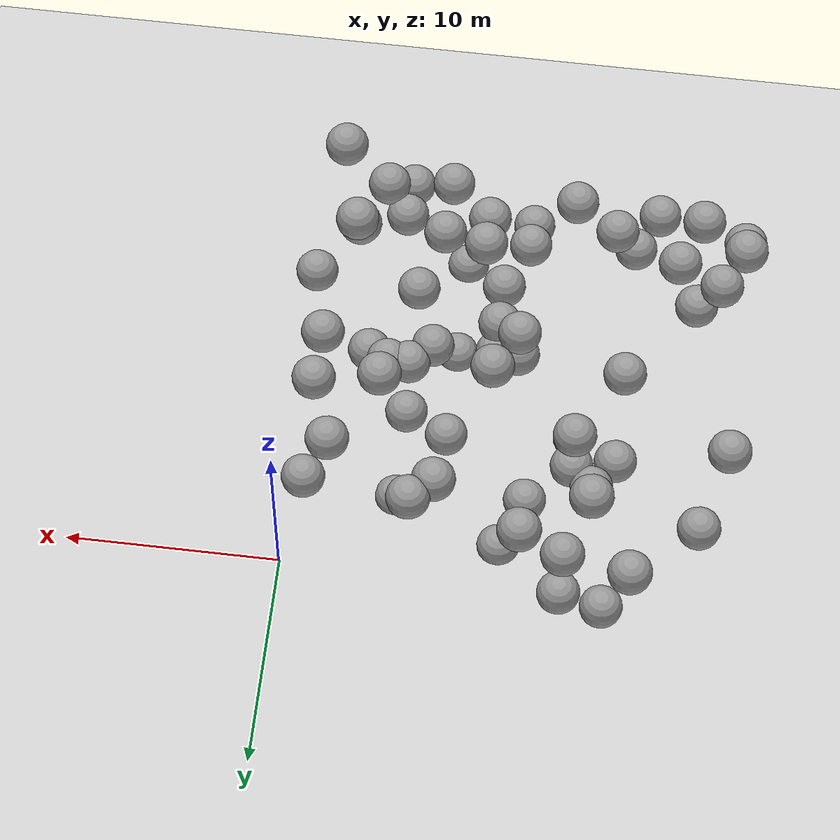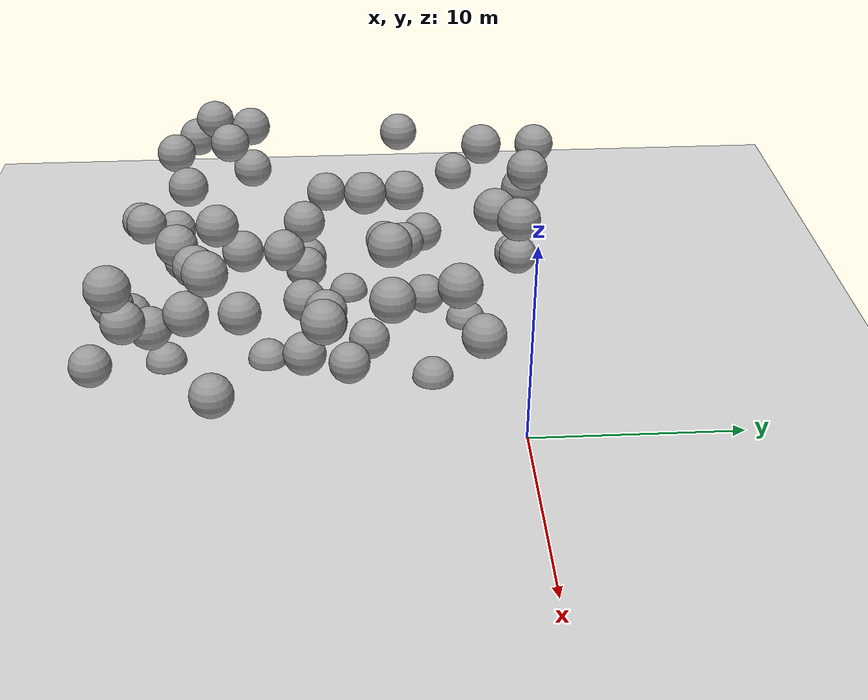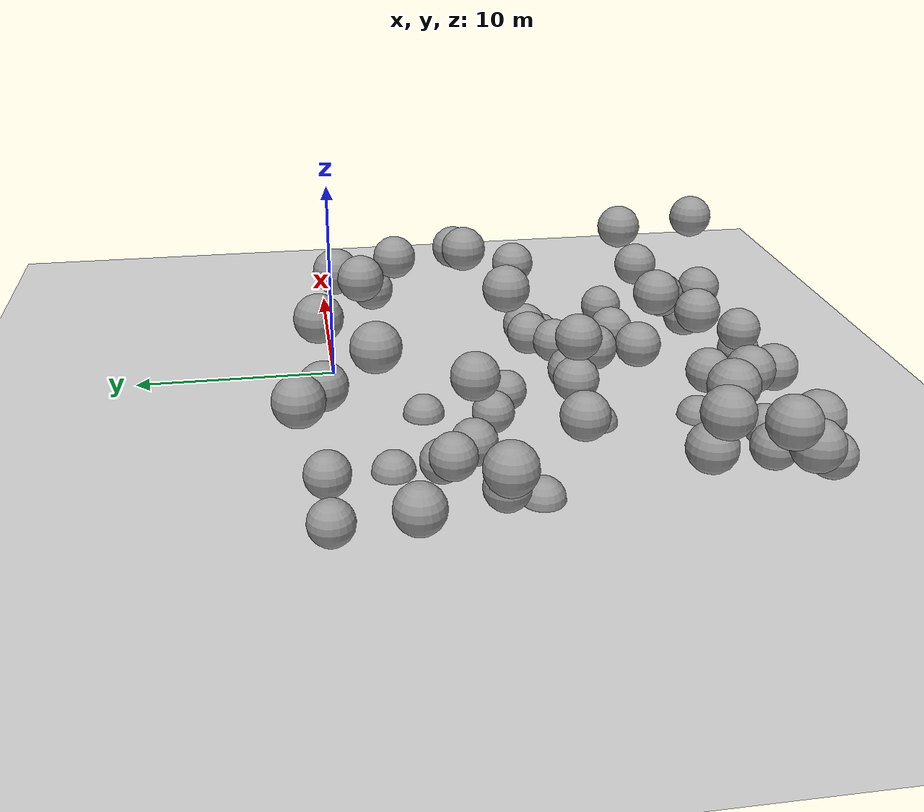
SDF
<sdf version="1.7">
 <world name="default">
  <model name="ground_plane">
   <static>1</static>
   <link name="link">
    <collision name="collision">
     <geometry><plane><normal>0 0 1</normal><size>100 100</size></plane></geometry>
     <surface>
      <contact><collide_bitmask>65535</collide_bitmask></contact>
      <friction><ode><mu>100</mu><mu2>50</mu2></ode></friction>
     </surface>
    </collision>
    <visual name="visual">
     <cast_shadows>0</cast_shadows>
     <geometry><plane><normal>0 0 1</normal><size>100 100</size></plane></geometry>
     <material>
      <script><uri>file://media/materials/scripts/gazebo.material</uri><name>Gazebo/Grey</name></script>
     </material>
    </visual>
   </link>
  </model>
  <model name="sphere_3">
   <static>1</static>
   <pose>-2 -3 7 0 0 0</pose>
   <link name="link">
    <inertial>
     <mass>418.87902047863906</mass>
     <inertia>
      <ixx>167.55160819145564</ixx>
      <iyy>167.55160819145564</iyy>
      <izz>167.55160819145564</izz>
      <ixy>0</ixy>
      <ixz>0</ixz>
      <iyz>0</iyz>
     </inertia>
    </inertial>
    <collision name="collision"><geometry><sphere><radius>1.0</radius></sphere></geometry></collision>
    <visual name="visual">
     <geometry><sphere><radius>1.0</radius></sphere></geometry>
     <material>
      <script><uri>file://media/materials/scripts/gazebo.material</uri><name>Gazebo/Grey</name></script>
     </material>
    </visual>
   </link>
  </model>
  <model name="sphere_6">
   <static>1</static>
   <pose>-15 -6 2 0 0 0</pose>
   <link name="link">
    <inertial>
     <mass>418.87902047863906</mass>
     <inertia>
      <ixx>167.55160819145564</ixx>
      <iyy>167.55160819145564</iyy>
      <izz>167.55160819145564</izz>
      <ixy>0</ixy>
      <ixz>0</ixz>
      <iyz>0</iyz>
     </inertia>
    </inertial>
    <collision name="collision"><geometry><sphere><radius>1.0</radius></sphere></geometry></collision>
    <visual name="visual">
     <geometry><sphere><radius>1.0</radius></sphere></geometry>
     <material>
      <script><uri>file://media/materials/scripts/gazebo.material</uri><name>Gazebo/Grey</name></script>
     </material>
    </visual>
   </link>
  </model>
  <model name="sphere_9">
   <static>1</static>
   <pose>-5 -4 0 0 0 0</pose>
   <link name="link">
    <inertial>
     <mass>418.87902047863906</mass>
     <inertia>
      <ixx>167.55160819145564</ixx>
      <iyy>167.55160819145564</iyy>
      <izz>167.55160819145564</izz>
      <ixy>0</ixy>
      <ixz>0</ixz>
      <iyz>0</iyz>
     </inertia>
    </inertial>
    <collision name="collision"><geometry><sphere><radius>1.0</radius></sphere></geometry></collision>
    <visual name="visual">
     <geometry><sphere><radius>1.0</radius></sphere></geometry>
     <material>
      <script><uri>file://media/materials/scripts/gazebo.material</uri><name>Gazebo/Grey</name></script>
     </material>
    </visual>
   </link>
  </model>
  <model name="sphere_14">
   <static>1</static>
   <pose>-7 -7 1 0 0 0</pose>
   <link name="link">
    <inertial>
     <mass>418.87902047863906</mass>
     <inertia>
      <ixx>167.55160819145564</ixx>
      <iyy>167.55160819145564</iyy>
      <izz>167.55160819145564</izz>
      <ixy>0</ixy>
      <ixz>0</ixz>
      <iyz>0</iyz>
     </inertia>
    </inertial>
    <collision name="collision"><geometry><sphere><radius>1.0</radius></sphere></geometry></collision>
    <visual name="visual">
     <geometry><sphere><radius>1.0</radius></sphere></geometry>
     <material>
      <script><uri>file://media/materials/scripts/gazebo.material</uri><name>Gazebo/Grey</name></script>
     </material>
    </visual>
   </link>
  </model>
  <model name="sphere_19">
   <static>1</static>
   <pose>-11 -4 1 0 0 0</pose>
   <link name="link">
    <inertial>
     <mass>418.87902047863906</mass>
     <inertia>
      <ixx>167.55160819145564</ixx>
      <iyy>167.55160819145564</iyy>
      <izz>167.55160819145564</izz>
      <ixy>0</ixy>
      <ixz>0</ixz>
      <iyz>0</iyz>
     </inertia>
    </inertial>
    <collision name="collision"><geometry><sphere><radius>1.0</radius></sphere></geometry></collision>
    <visual name="visual">
     <geometry><sphere><radius>1.0</radius></sphere></geometry>
     <material>
      <script><uri>file://media/materials/scripts/gazebo.material</uri><name>Gazebo/Grey</name></script>
     </material>
    </visual>
   </link>
  </model>
  <model name="sphere_24">
   <static>1</static>
   <pose>-19 -2 4 0 0 0</pose>
   <link name="link">
    <inertial>
     <mass>418.87902047863906</mass>
     <inertia>
      <ixx>167.55160819145564</ixx>
      <iyy>167.55160819145564</iyy>
      <izz>167.55160819145564</izz>
      <ixy>0</ixy>
      <ixz>0</ixz>
      <iyz>0</iyz>
     </inertia>
    </inertial>
    <collision name="collision"><geometry><sphere><radius>1.0</radius></sphere></geometry></collision>
    <visual name="visual">
     <geometry><sphere><radius>1.0</radius></sphere></geometry>
     <material>
      <script><uri>file://media/materials/scripts/gazebo.material</uri><name>Gazebo/Grey</name></script>
     </material>
    </visual>
   </link>
  </model>
  <model name="sphere_27">
   <static>1</static>
   <pose>-10 -2 0 0 0 0</pose>
   <link name="link">
    <inertial>
     <mass>418.87902047863906</mass>
     <inertia>
      <ixx>167.55160819145564</ixx>
      <iyy>167.55160819145564</iyy>
      <izz>167.55160819145564</izz>
      <ixy>0</ixy>
      <ixz>0</ixz>
      <iyz>0</iyz>
     </inertia>
    </inertial>
    <collision name="collision"><geometry><sphere><radius>1.0</radius></sphere></geometry></collision>
    <visual name="visual">
     <geometry><sphere><radius>1.0</radius></sphere></geometry>
     <material>
      <script><uri>file://media/materials/scripts/gazebo.material</uri><name>Gazebo/Grey</name></script>
     </material>
    </visual>
   </link>
  </model>
  <model name="sphere_29">
   <static>1</static>
   <pose>-13 -5 6 0 0 0</pose>
   <link name="link">
    <inertial>
     <mass>418.87902047863906</mass>
     <inertia>
      <ixx>167.55160819145564</ixx>
      <iyy>167.55160819145564</iyy>
      <izz>167.55160819145564</izz>
      <ixy>0</ixy>
      <ixz>0</ixz>
      <iyz>0</iyz>
     </inertia>
    </inertial>
    <collision name="collision"><geometry><sphere><radius>1.0</radius></sphere></geometry></collision>
    <visual name="visual">
     <geometry><sphere><radius>1.0</radius></sphere></geometry>
     <material>
      <script><uri>file://media/materials/scripts/gazebo.material</uri><name>Gazebo/Grey</name></script>
     </material>
    </visual>
   </link>
  </model>
  <model name="sphere_30">
   <static>1</static>
   <pose>-9 -11 5 0 0 0</pose>
   <link name="link">
    <inertial>
     <mass>418.87902047863906</mass>
     <inertia>
      <ixx>167.55160819145564</ixx>
      <iyy>167.55160819145564</iyy>
      <izz>167.55160819145564</izz>
      <ixy>0</ixy>
      <ixz>0</ixz>
      <iyz>0</iyz>
     </inertia>
    </inertial>
    <collision name="collision"><geometry><sphere><radius>1.0</radius></sphere></geometry></collision>
    <visual name="visual">
     <geometry><sphere><radius>1.0</radius></sphere></geometry>
     <material>
      <script><uri>file://media/materials/scripts/gazebo.material</uri><name>Gazebo/Grey</name></script>
     </material>
    </visual>
   </link>
  </model>
  <model name="sphere_33">
   <static>1</static>
   <pose>-3 -10 3 0 0 0</pose>
   <link name="link">
    <inertial>
     <mass>418.87902047863906</mass>
     <inertia>
      <ixx>167.55160819145564</ixx>
      <iyy>167.55160819145564</iyy>
      <izz>167.55160819145564</izz>
      <ixy>0</ixy>
      <ixz>0</ixz>
      <iyz>0</iyz>
     </inertia>
    </inertial>
    <collision name="collision"><geometry><sphere><radius>1.0</radius></sphere></geometry></collision>
    <visual name="visual">
     <geometry><sphere><radius>1.0</radius></sphere></geometry>
     <material>
      <script><uri>file://media/materials/scripts/gazebo.material</uri><name>Gazebo/Grey</name></script>
     </material>
    </visual>
   </link>
  </model>
  <model name="sphere_37">
   <static>1</static>
   <pose>-1 -2 5 0 0 0</pose>
   <link name="link">
    <inertial>
     <mass>418.87902047863906</mass>
     <inertia>
      <ixx>167.55160819145564</ixx>
      <iyy>167.55160819145564</iyy>
      <izz>167.55160819145564</izz>
      <ixy>0</ixy>
      <ixz>0</ixz>
      <iyz>0</iyz>
     </inertia>
    </inertial>
    <collision name="collision"><geometry><sphere><radius>1.0</radius></sphere></geometry></collision>
    <visual name="visual">
     <geometry><sphere><radius>1.0</radius></sphere></geometry>
     <material>
      <script><uri>file://media/materials/scripts/gazebo.material</uri><name>Gazebo/Grey</name></script>
     </material>
    </visual>
   </link>
  </model>
  <model name="sphere_38">
   <static>1</static>
   <pose>-6 -19 4 0 0 0</pose>
   <link name="link">
    <inertial>
     <mass>418.87902047863906</mass>
     <inertia>
      <ixx>167.55160819145564</ixx>
      <iyy>167.55160819145564</iyy>
      <izz>167.55160819145564</izz>
      <ixy>0</ixy>
      <ixz>0</ixz>
      <iyz>0</iyz>
     </inertia>
    </inertial>
    <collision name="collision"><geometry><sphere><radius>1.0</radius></sphere></geometry></collision>
    <visual name="visual">
     <geometry><sphere><radius>1.0</radius></sphere></geometry>
     <material>
      <script><uri>file://media/materials/scripts/gazebo.material</uri><name>Gazebo/Grey</name></script>
     </material>
    </visual>
   </link>
  </model>
  <model name="sphere_54">
   <static>1</static>
   <pose>-1 -6 7 0 0 0</pose>
   <link name="link">
    <inertial>
     <mass>418.87902047863906</mass>
     <inertia>
      <ixx>167.55160819145564</ixx>
      <iyy>167.55160819145564</iyy>
      <izz>167.55160819145564</izz>
      <ixy>0</ixy>
      <ixz>0</ixz>
      <iyz>0</iyz>
     </inertia>
    </inertial>
    <collision name="collision"><geometry><sphere><radius>1.0</radius></sphere></geometry></collision>
    <visual name="visual">
     <geometry><sphere><radius>1.0</radius></sphere></geometry>
     <material>
      <script><uri>file://media/materials/scripts/gazebo.material</uri><name>Gazebo/Grey</name></script>
     </material>
    </visual>
   </link>
  </model>
  <model name="sphere_56">
   <static>1</static>
   <pose>-10 -10 6 0 0 0</pose>
   <link name="link">
    <inertial>
     <mass>418.87902047863906</mass>
     <inertia>
      <ixx>167.55160819145564</ixx>
      <iyy>167.55160819145564</iyy>
      <izz>167.55160819145564</izz>
      <ixy>0</ixy>
      <ixz>0</ixz>
      <iyz>0</iyz>
     </inertia>
    </inertial>
    <collision name="collision"><geometry><sphere><radius>1.0</radius></sphere></geometry></collision>
    <visual name="visual">
     <geometry><sphere><radius>1.0</radius></sphere></geometry>
     <material>
      <script><uri>file://media/materials/scripts/gazebo.material</uri><name>Gazebo/Grey</name></script>
     </material>
    </visual>
   </link>
  </model>
  <model name="sphere_58">
   <static>1</static>
   <pose>-16 2 7 0 0 0</pose>
   <link name="link">
    <inertial>
     <mass>418.87902047863906</mass>
     <inertia>
      <ixx>167.55160819145564</ixx>
      <iyy>167.55160819145564</iyy>
      <izz>167.55160819145564</izz>
      <ixy>0</ixy>
      <ixz>0</ixz>
      <iyz>0</iyz>
     </inertia>
    </inertial>
    <collision name="collision"><geometry><sphere><radius>1.0</radius></sphere></geometry></collision>
    <visual name="visual">
     <geometry><sphere><radius>1.0</radius></sphere></geometry>
     <material>
      <script><uri>file://media/materials/scripts/gazebo.material</uri><name>Gazebo/Grey</name></script>
     </material>
    </visual>
   </link>
  </model>
  <model name="sphere_60">
   <static>1</static>
   <pose>-16 -19 3 0 0 0</pose>
   <link name="link">
    <inertial>
     <mass>418.87902047863906</mass>
     <inertia>
      <ixx>167.55160819145564</ixx>
      <iyy>167.55160819145564</iyy>
      <izz>167.55160819145564</izz>
      <ixy>0</ixy>
      <ixz>0</ixz>
      <iyz>0</iyz>
     </inertia>
    </inertial>
    <collision name="collision"><geometry><sphere><radius>1.0</radius></sphere></geometry></collision>
    <visual name="visual">
     <geometry><sphere><radius>1.0</radius></sphere></geometry>
     <material>
      <script><uri>file://media/materials/scripts/gazebo.material</uri><name>Gazebo/Grey</name></script>
     </material>
    </visual>
   </link>
  </model>
  <model name="sphere_64">
   <static>1</static>
   <pose>-18 -17 6 0 0 0</pose>
   <link name="link">
    <inertial>
     <mass>418.87902047863906</mass>
     <inertia>
      <ixx>167.55160819145564</ixx>
      <iyy>167.55160819145564</iyy>
      <izz>167.55160819145564</izz>
      <ixy>0</ixy>
      <ixz>0</ixz>
      <iyz>0</iyz>
     </inertia>
    </inertial>
    <collision name="collision"><geometry><sphere><radius>1.0</radius></sphere></geometry></collision>
    <visual name="visual">
     <geometry><sphere><radius>1.0</radius></sphere></geometry>
     <material>
      <script><uri>file://media/materials/scripts/gazebo.material</uri><name>Gazebo/Grey</name></script>
     </material>
    </visual>
   </link>
  </model>
  <model name="sphere_67">
   <static>1</static>
   <pose>-7 -17 0 0 0 0</pose>
   <link name="link">
    <inertial>
     <mass>418.87902047863906</mass>
     <inertia>
      <ixx>167.55160819145564</ixx>
      <iyy>167.55160819145564</iyy>
      <izz>167.55160819145564</izz>
      <ixy>0</ixy>
      <ixz>0</ixz>
      <iyz>0</iyz>
     </inertia>
    </inertial>
    <collision name="collision"><geometry><sphere><radius>1.0</radius></sphere></geometry></collision>
    <visual name="visual">
     <geometry><sphere><radius>1.0</radius></sphere></geometry>
     <material>
      <script><uri>file://media/materials/scripts/gazebo.material</uri><name>Gazebo/Grey</name></script>
     </material>
    </visual>
   </link>
  </model>
  <model name="sphere_76">
   <static>1</static>
   <pose>-5 -8 1 0 0 0</pose>
   <link name="link">
    <inertial>
     <mass>418.87902047863906</mass>
     <inertia>
      <ixx>167.55160819145564</ixx>
      <iyy>167.55160819145564</iyy>
      <izz>167.55160819145564</izz>
      <ixy>0</ixy>
      <ixz>0</ixz>
      <iyz>0</iyz>
     </inertia>
    </inertial>
    <collision name="collision"><geometry><sphere><radius>1.0</radius></sphere></geometry></collision>
    <visual name="visual">
     <geometry><sphere><radius>1.0</radius></sphere></geometry>
     <material>
      <script><uri>file://media/materials/scripts/gazebo.material</uri><name>Gazebo/Grey</name></script>
     </material>
    </visual>
   </link>
  </model>
  <model name="sphere_77">
   <static>1</static>
   <pose>-7 -12 0 0 0 0</pose>
   <link name="link">
    <inertial>
     <mass>418.87902047863906</mass>
     <inertia>
      <ixx>167.55160819145564</ixx>
      <iyy>167.55160819145564</iyy>
      <izz>167.55160819145564</izz>
      <ixy>0</ixy>
      <ixz>0</ixz>
      <iyz>0</iyz>
     </inertia>
    </inertial>
    <collision name="collision"><geometry><sphere><radius>1.0</radius></sphere></geometry></collision>
    <visual name="visual">
     <geometry><sphere><radius>1.0</radius></sphere></geometry>
     <material>
      <script><uri>file://media/materials/scripts/gazebo.material</uri><name>Gazebo/Grey</name></script>
     </material>
    </visual>
   </link>
  </model>
  <model name="sphere_79">
   <static>1</static>
   <pose>-11 1 8 0 0 0</pose>
   <link name="link">
    <inertial>
     <mass>418.87902047863906</mass>
     <inertia>
      <ixx>167.55160819145564</ixx>
      <iyy>167.55160819145564</iyy>
      <izz>167.55160819145564</izz>
      <ixy>0</ixy>
      <ixz>0</ixz>
      <iyz>0</iyz>
     </inertia>
    </inertial>
    <collision name="collision"><geometry><sphere><radius>1.0</radius></sphere></geometry></collision>
    <visual name="visual">
     <geometry><sphere><radius>1.0</radius></sphere></geometry>
     <material>
      <script><uri>file://media/materials/scripts/gazebo.material</uri><name>Gazebo/Grey</name></script>
     </material>
    </visual>
   </link>
  </model>
  <model name="sphere_92">
   <static>1</static>
   <pose>-8 -14 7 0 0 0</pose>
   <link name="link">
    <inertial>
     <mass>418.87902047863906</mass>
     <inertia>
      <ixx>167.55160819145564</ixx>
      <iyy>167.55160819145564</iyy>
      <izz>167.55160819145564</izz>
      <ixy>0</ixy>
      <ixz>0</ixz>
      <iyz>0</iyz>
     </inertia>
    </inertial>
    <collision name="collision"><geometry><sphere><radius>1.0</radius></sphere></geometry></collision>
    <visual name="visual">
     <geometry><sphere><radius>1.0</radius></sphere></geometry>
     <material>
      <script><uri>file://media/materials/scripts/gazebo.material</uri><name>Gazebo/Grey</name></script>
     </material>
    </visual>
   </link>
  </model>
  <model name="sphere_110">
   <static>1</static>
   <pose>-4 -9 4 0 0 0</pose>
   <link name="link">
    <inertial>
     <mass>418.87902047863906</mass>
     <inertia>
      <ixx>167.55160819145564</ixx>
      <iyy>167.55160819145564</iyy>
      <izz>167.55160819145564</izz>
      <ixy>0</ixy>
      <ixz>0</ixz>
      <iyz>0</iyz>
     </inertia>
    </inertial>
    <collision name="collision"><geometry><sphere><radius>1.0</radius></sphere></geometry></collision>
    <visual name="visual">
     <geometry><sphere><radius>1.0</radius></sphere></geometry>
     <material>
      <script><uri>file://media/materials/scripts/gazebo.material</uri><name>Gazebo/Grey</name></script>
     </material>
    </visual>
   </link>
  </model>
  <model name="sphere_111">
   <static>1</static>
   <pose>-5 -13 4 0 0 0</pose>
   <link name="link">
    <inertial>
     <mass>418.87902047863906</mass>
     <inertia>
      <ixx>167.55160819145564</ixx>
      <iyy>167.55160819145564</iyy>
      <izz>167.55160819145564</izz>
      <ixy>0</ixy>
      <ixz>0</ixz>
      <iyz>0</iyz>
     </inertia>
    </inertial>
    <collision name="collision"><geometry><sphere><radius>1.0</radius></sphere></geometry></collision>
    <visual name="visual">
     <geometry><sphere><radius>1.0</radius></sphere></geometry>
     <material>
      <script><uri>file://media/materials/scripts/gazebo.material</uri><name>Gazebo/Grey</name></script>
     </material>
    </visual>
   </link>
  </model>
  <model name="sphere_112">
   <static>1</static>
   <pose>-6 -15 6 0 0 0</pose>
   <link name="link">
    <inertial>
     <mass>418.87902047863906</mass>
     <inertia>
      <ixx>167.55160819145564</ixx>
      <iyy>167.55160819145564</iyy>
      <izz>167.55160819145564</izz>
      <ixy>0</ixy>
      <ixz>0</ixz>
      <iyz>0</iyz>
     </inertia>
    </inertial>
    <collision name="collision"><geometry><sphere><radius>1.0</radius></sphere></geometry></collision>
    <visual name="visual">
     <geometry><sphere><radius>1.0</radius></sphere></geometry>
     <material>
      <script><uri>file://media/materials/scripts/gazebo.material</uri><name>Gazebo/Grey</name></script>
     </material>
    </visual>
   </link>
  </model>
  <model name="sphere_119">
   <static>1</static>
   <pose>-10 -16 4 0 0 0</pose>
   <link name="link">
    <inertial>
     <mass>418.87902047863906</mass>
     <inertia>
      <ixx>167.55160819145564</ixx>
      <iyy>167.55160819145564</iyy>
      <izz>167.55160819145564</izz>
      <ixy>0</ixy>
      <ixz>0</ixz>
      <iyz>0</iyz>
     </inertia>
    </inertial>
    <collision name="collision"><geometry><sphere><radius>1.0</radius></sphere></geometry></collision>
    <visual name="visual">
     <geometry><sphere><radius>1.0</radius></sphere></geometry>
     <material>
      <script><uri>file://media/materials/scripts/gazebo.material</uri><name>Gazebo/Grey</name></script>
     </material>
    </visual>
   </link>
  </model>
  <model name="sphere_120">
   <static>1</static>
   <pose>-14 -4 3 0 0 0</pose>
   <link name="link">
    <inertial>
     <mass>418.87902047863906</mass>
     <inertia>
      <ixx>167.55160819145564</ixx>
      <iyy>167.55160819145564</iyy>
      <izz>167.55160819145564</izz>
      <ixy>0</ixy>
      <ixz>0</ixz>
      <iyz>0</iyz>
     </inertia>
    </inertial>
    <collision name="collision"><geometry><sphere><radius>1.0</radius></sphere></geometry></collision>
    <visual name="visual">
     <geometry><sphere><radius>1.0</radius></sphere></geometry>
     <material>
      <script><uri>file://media/materials/scripts/gazebo.material</uri><name>Gazebo/Grey</name></script>
     </material>
    </visual>
   </link>
  </model>
  <model name="sphere_122">
   <static>1</static>
   <pose>0 -14 3 0 0 0</pose>
   <link name="link">
    <inertial>
     <mass>418.87902047863906</mass>
     <inertia>
      <ixx>167.55160819145564</ixx>
      <iyy>167.55160819145564</iyy>
      <izz>167.55160819145564</izz>
      <ixy>0</ixy>
      <ixz>0</ixz>
      <iyz>0</iyz>
     </inertia>
    </inertial>
    <collision name="collision"><geometry><sphere><radius>1.0</radius></sphere></geometry></collision>
    <visual name="visual">
     <geometry><sphere><radius>1.0</radius></sphere></geometry>
     <material>
      <script><uri>file://media/materials/scripts/gazebo.material</uri><name>Gazebo/Grey</name></script>
     </material>
    </visual>
   </link>
  </model>
  <model name="sphere_124">
   <static>1</static>
   <pose>-5 -9 4 0 0 0</pose>
   <link name="link">
    <inertial>
     <mass>418.87902047863906</mass>
     <inertia>
      <ixx>167.55160819145564</ixx>
      <iyy>167.55160819145564</iyy>
      <izz>167.55160819145564</izz>
      <ixy>0</ixy>
      <ixz>0</ixz>
      <iyz>0</iyz>
     </inertia>
    </inertial>
    <collision name="collision"><geometry><sphere><radius>1.0</radius></sphere></geometry></collision>
    <visual name="visual">
     <geometry><sphere><radius>1.0</radius></sphere></geometry>
     <material>
      <script><uri>file://media/materials/scripts/gazebo.material</uri><name>Gazebo/Grey</name></script>
     </material>
    </visual>
   </link>
  </model>
  <model name="sphere_125">
   <static>1</static>
   <pose>-9 -7 8 0 0 0</pose>
   <link name="link">
    <inertial>
     <mass>418.87902047863906</mass>
     <inertia>
      <ixx>167.55160819145564</ixx>
      <iyy>167.55160819145564</iyy>
      <izz>167.55160819145564</izz>
      <ixy>0</ixy>
      <ixz>0</ixz>
      <iyz>0</iyz>
     </inertia>
    </inertial>
    <collision name="collision"><geometry><sphere><radius>1.0</radius></sphere></geometry></collision>
    <visual name="visual">
     <geometry><sphere><radius>1.0</radius></sphere></geometry>
     <material>
      <script><uri>file://media/materials/scripts/gazebo.material</uri><name>Gazebo/Grey</name></script>
     </material>
    </visual>
   </link>
  </model>
  <model name="sphere_126">
   <static>1</static>
   <pose>-13 1 2 0 0 0</pose>
   <link name="link">
    <inertial>
     <mass>418.87902047863906</mass>
     <inertia>
      <ixx>167.55160819145564</ixx>
      <iyy>167.55160819145564</iyy>
      <izz>167.55160819145564</izz>
      <ixy>0</ixy>
      <ixz>0</ixz>
      <iyz>0</iyz>
     </inertia>
    </inertial>
    <collision name="collision"><geometry><sphere><radius>1.0</radius></sphere></geometry></collision>
    <visual name="visual">
     <geometry><sphere><radius>1.0</radius></sphere></geometry>
     <material>
      <script><uri>file://media/materials/scripts/gazebo.material</uri><name>Gazebo/Grey</name></script>
     </material>
    </visual>
   </link>
  </model>
  <model name="sphere_128">
   <static>1</static>
   <pose>-12 -18 5 0 0 0</pose>
   <link name="link">
    <inertial>
     <mass>418.87902047863906</mass>
     <inertia>
      <ixx>167.55160819145564</ixx>
      <iyy>167.55160819145564</iyy>
      <izz>167.55160819145564</izz>
      <ixy>0</ixy>
      <ixz>0</ixz>
      <iyz>0</iyz>
     </inertia>
    </inertial>
    <collision name="collision"><geometry><sphere><radius>1.0</radius></sphere></geometry></collision>
    <visual name="visual">
     <geometry><sphere><radius>1.0</radius></sphere></geometry>
     <material>
      <script><uri>file://media/materials/scripts/gazebo.material</uri><name>Gazebo/Grey</name></script>
     </material>
    </visual>
   </link>
  </model>
  <model name="sphere_132">
   <static>1</static>
   <pose>-18 -13 5 0 0 0</pose>
   <link name="link">
    <inertial>
     <mass>418.87902047863906</mass>
     <inertia>
      <ixx>167.55160819145564</ixx>
      <iyy>167.55160819145564</iyy>
      <izz>167.55160819145564</izz>
      <ixy>0</ixy>
      <ixz>0</ixz>
      <iyz>0</iyz>
     </inertia>
    </inertial>
    <collision name="collision"><geometry><sphere><radius>1.0</radius></sphere></geometry></collision>
    <visual name="visual">
     <geometry><sphere><radius>1.0</radius></sphere></geometry>
     <material>
      <script><uri>file://media/materials/scripts/gazebo.material</uri><name>Gazebo/Grey</name></script>
     </material>
    </visual>
   </link>
  </model>
  <model name="sphere_136">
   <static>1</static>
   <pose>-2 -15 6 0 0 0</pose>
   <link name="link">
    <inertial>
     <mass>418.87902047863906</mass>
     <inertia>
      <ixx>167.55160819145564</ixx>
      <iyy>167.55160819145564</iyy>
      <izz>167.55160819145564</izz>
      <ixy>0</ixy>
      <ixz>0</ixz>
      <iyz>0</iyz>
     </inertia>
    </inertial>
    <collision name="collision"><geometry><sphere><radius>1.0</radius></sphere></geometry></collision>
    <visual name="visual">
     <geometry><sphere><radius>1.0</radius></sphere></geometry>
     <material>
      <script><uri>file://media/materials/scripts/gazebo.material</uri><name>Gazebo/Grey</name></script>
     </material>
    </visual>
   </link>
  </model>
  <model name="sphere_138">
   <static>1</static>
   <pose>-20 -16 6 0 0 0</pose>
   <link name="link">
    <inertial>
     <mass>418.87902047863906</mass>
     <inertia>
      <ixx>167.55160819145564</ixx>
      <iyy>167.55160819145564</iyy>
      <izz>167.55160819145564</izz>
      <ixy>0</ixy>
      <ixz>0</ixz>
      <iyz>0</iyz>
     </inertia>
    </inertial>
    <collision name="collision"><geometry><sphere><radius>1.0</radius></sphere></geometry></collision>
    <visual name="visual">
     <geometry><sphere><radius>1.0</radius></sphere></geometry>
     <material>
      <script><uri>file://media/materials/scripts/gazebo.material</uri><name>Gazebo/Grey</name></script>
     </material>
    </visual>
   </link>
  </model>
  <model name="sphere_140">
   <static>1</static>
   <pose>-14 -16 6 0 0 0</pose>
   <link name="link">
    <inertial>
     <mass>418.87902047863906</mass>
     <inertia>
      <ixx>167.55160819145564</ixx>
      <iyy>167.55160819145564</iyy>
      <izz>167.55160819145564</izz>
      <ixy>0</ixy>
      <ixz>0</ixz>
      <iyz>0</iyz>
     </inertia>
    </inertial>
    <collision name="collision"><geometry><sphere><radius>1.0</radius></sphere></geometry></collision>
    <visual name="visual">
     <geometry><sphere><radius>1.0</radius></sphere></geometry>
     <material>
      <script><uri>file://media/materials/scripts/gazebo.material</uri><name>Gazebo/Grey</name></script>
     </material>
    </visual>
   </link>
  </model>
  <model name="sphere_146">
   <static>1</static>
   <pose>-14 -1 8 0 0 0</pose>
   <link name="link">
    <inertial>
     <mass>418.87902047863906</mass>
     <inertia>
      <ixx>167.55160819145564</ixx>
      <iyy>167.55160819145564</iyy>
      <izz>167.55160819145564</izz>
      <ixy>0</ixy>
      <ixz>0</ixz>
      <iyz>0</iyz>
     </inertia>
    </inertial>
    <collision name="collision"><geometry><sphere><radius>1.0</radius></sphere></geometry></collision>
    <visual name="visual">
     <geometry><sphere><radius>1.0</radius></sphere></geometry>
     <material>
      <script><uri>file://media/materials/scripts/gazebo.material</uri><name>Gazebo/Grey</name></script>
     </material>
    </visual>
   </link>
  </model>
  <model name="sphere_149">
   <static>1</static>
   <pose>-7 -1 8 0 0 0</pose>
   <link name="link">
    <inertial>
     <mass>418.87902047863906</mass>
     <inertia>
      <ixx>167.55160819145564</ixx>
      <iyy>167.55160819145564</iyy>
      <izz>167.55160819145564</izz>
      <ixy>0</ixy>
      <ixz>0</ixz>
      <iyz>0</iyz>
     </inertia>
    </inertial>
    <collision name="collision"><geometry><sphere><radius>1.0</radius></sphere></geometry></collision>
    <visual name="visual">
     <geometry><sphere><radius>1.0</radius></sphere></geometry>
     <material>
      <script><uri>file://media/materials/scripts/gazebo.material</uri><name>Gazebo/Grey</name></script>
     </material>
    </visual>
   </link>
  </model>
  <model name="sphere_150">
   <static>1</static>
   <pose>-1 -18 8 0 0 0</pose>
   <link name="link">
    <inertial>
     <mass>418.87902047863906</mass>
     <inertia>
      <ixx>167.55160819145564</ixx>
      <iyy>167.55160819145564</iyy>
      <izz>167.55160819145564</izz>
      <ixy>0</ixy>
      <ixz>0</ixz>
      <iyz>0</iyz>
     </inertia>
    </inertial>
    <collision name="collision"><geometry><sphere><radius>1.0</radius></sphere></geometry></collision>
    <visual name="visual">
     <geometry><sphere><radius>1.0</radius></sphere></geometry>
     <material>
      <script><uri>file://media/materials/scripts/gazebo.material</uri><name>Gazebo/Grey</name></script>
     </material>
    </visual>
   </link>
  </model>
  <model name="sphere_160">
   <static>1</static>
   <pose>-9 -10 4 0 0 0</pose>
   <link name="link">
    <inertial>
     <mass>418.87902047863906</mass>
     <inertia>
      <ixx>167.55160819145564</ixx>
      <iyy>167.55160819145564</iyy>
      <izz>167.55160819145564</izz>
      <ixy>0</ixy>
      <ixz>0</ixz>
      <iyz>0</iyz>
     </inertia>
    </inertial>
    <collision name="collision"><geometry><sphere><radius>1.0</radius></sphere></geometry></collision>
    <visual name="visual">
     <geometry><sphere><radius>1.0</radius></sphere></geometry>
     <material>
      <script><uri>file://media/materials/scripts/gazebo.material</uri><name>Gazebo/Grey</name></script>
     </material>
    </visual>
   </link>
  </model>
  <model name="sphere_162">
   <static>1</static>
   <pose>-15 -9 5 0 0 0</pose>
   <link name="link">
    <inertial>
     <mass>418.87902047863906</mass>
     <inertia>
      <ixx>167.55160819145564</ixx>
      <iyy>167.55160819145564</iyy>
      <izz>167.55160819145564</izz>
      <ixy>0</ixy>
      <ixz>0</ixz>
      <iyz>0</iyz>
     </inertia>
    </inertial>
    <collision name="collision"><geometry><sphere><radius>1.0</radius></sphere></geometry></collision>
    <visual name="visual">
     <geometry><sphere><radius>1.0</radius></sphere></geometry>
     <material>
      <script><uri>file://media/materials/scripts/gazebo.material</uri><name>Gazebo/Grey</name></script>
     </material>
    </visual>
   </link>
  </model>
  <model name="sphere_172">
   <static>1</static>
   <pose>-15 1 1 0 0 0</pose>
   <link name="link">
    <inertial>
     <mass>418.87902047863906</mass>
     <inertia>
      <ixx>167.55160819145564</ixx>
      <iyy>167.55160819145564</iyy>
      <izz>167.55160819145564</izz>
      <ixy>0</ixy>
      <ixz>0</ixz>
      <iyz>0</iyz>
     </inertia>
    </inertial>
    <collision name="collision"><geometry><sphere><radius>1.0</radius></sphere></geometry></collision>
    <visual name="visual">
     <geometry><sphere><radius>1.0</radius></sphere></geometry>
     <material>
      <script><uri>file://media/materials/scripts/gazebo.material</uri><name>Gazebo/Grey</name></script>
     </material>
    </visual>
   </link>
  </model>
  <model name="sphere_176">
   <static>1</static>
   <pose>-3 -18 5 0 0 0</pose>
   <link name="link">
    <inertial>
     <mass>418.87902047863906</mass>
     <inertia>
      <ixx>167.55160819145564</ixx>
      <iyy>167.55160819145564</iyy>
      <izz>167.55160819145564</izz>
      <ixy>0</ixy>
      <ixz>0</ixz>
      <iyz>0</iyz>
     </inertia>
    </inertial>
    <collision name="collision"><geometry><sphere><radius>1.0</radius></sphere></geometry></collision>
    <visual name="visual">
     <geometry><sphere><radius>1.0</radius></sphere></geometry>
     <material>
      <script><uri>file://media/materials/scripts/gazebo.material</uri><name>Gazebo/Grey</name></script>
     </material>
    </visual>
   </link>
  </model>
  <model name="sphere_184">
   <static>1</static>
   <pose>-17 -14 7 0 0 0</pose>
   <link name="link">
    <inertial>
     <mass>418.87902047863906</mass>
     <inertia>
      <ixx>167.55160819145564</ixx>
      <iyy>167.55160819145564</iyy>
      <izz>167.55160819145564</izz>
      <ixy>0</ixy>
      <ixz>0</ixz>
      <iyz>0</iyz>
     </inertia>
    </inertial>
    <collision name="collision"><geometry><sphere><radius>1.0</radius></sphere></geometry></collision>
    <visual name="visual">
     <geometry><sphere><radius>1.0</radius></sphere></geometry>
     <material>
      <script><uri>file://media/materials/scripts/gazebo.material</uri><name>Gazebo/Grey</name></script>
     </material>
    </visual>
   </link>
  </model>
  <model name="sphere_188">
   <static>1</static>
   <pose>-19 -13 7 0 0 0</pose>
   <link name="link">
    <inertial>
     <mass>418.87902047863906</mass>
     <inertia>
      <ixx>167.55160819145564</ixx>
      <iyy>167.55160819145564</iyy>
      <izz>167.55160819145564</izz>
      <ixy>0</ixy>
      <ixz>0</ixz>
      <iyz>0</iyz>
     </inertia>
    </inertial>
    <collision name="collision"><geometry><sphere><radius>1.0</radius></sphere></geometry></collision>
    <visual name="visual">
     <geometry><sphere><radius>1.0</radius></sphere></geometry>
     <material>
      <script><uri>file://media/materials/scripts/gazebo.material</uri><name>Gazebo/Grey</name></script>
     </material>
    </visual>
   </link>
  </model>
  <model name="sphere_193">
   <static>1</static>
   <pose>-13 -8 0 0 0 0</pose>
   <link name="link">
    <inertial>
     <mass>418.87902047863906</mass>
     <inertia>
      <ixx>167.55160819145564</ixx>
      <iyy>167.55160819145564</iyy>
      <izz>167.55160819145564</izz>
      <ixy>0</ixy>
      <ixz>0</ixz>
      <iyz>0</iyz>
     </inertia>
    </inertial>
    <collision name="collision"><geometry><sphere><radius>1.0</radius></sphere></geometry></collision>
    <visual name="visual">
     <geometry><sphere><radius>1.0</radius></sphere></geometry>
     <material>
      <script><uri>file://media/materials/scripts/gazebo.material</uri><name>Gazebo/Grey</name></script>
     </material>
    </visual>
   </link>
  </model>
  <model name="sphere_195">
   <static>1</static>
   <pose>-6 0 8 0 0 0</pose>
   <link name="link">
    <inertial>
     <mass>418.87902047863906</mass>
     <inertia>
      <ixx>167.55160819145564</ixx>
      <iyy>167.55160819145564</iyy>
      <izz>167.55160819145564</izz>
      <ixy>0</ixy>
      <ixz>0</ixz>
      <iyz>0</iyz>
     </inertia>
    </inertial>
    <collision name="collision"><geometry><sphere><radius>1.0</radius></sphere></geometry></collision>
    <visual name="visual">
     <geometry><sphere><radius>1.0</radius></sphere></geometry>
     <material>
      <script><uri>file://media/materials/scripts/gazebo.material</uri><name>Gazebo/Grey</name></script>
     </material>
    </visual>
   </link>
  </model>
  <model name="sphere_197">
   <static>1</static>
   <pose>-8 -16 6 0 0 0</pose>
   <link name="link">
    <inertial>
     <mass>418.87902047863906</mass>
     <inertia>
      <ixx>167.55160819145564</ixx>
      <iyy>167.55160819145564</iyy>
      <izz>167.55160819145564</izz>
      <ixy>0</ixy>
      <ixz>0</ixz>
      <iyz>0</iyz>
     </inertia>
    </inertial>
    <collision name="collision"><geometry><sphere><radius>1.0</radius></sphere></geometry></collision>
    <visual name="visual">
     <geometry><sphere><radius>1.0</radius></sphere></geometry>
     <material>
      <script><uri>file://media/materials/scripts/gazebo.material</uri><name>Gazebo/Grey</name></script>
     </material>
    </visual>
   </link>
  </model>
  <model name="sphere_206">
   <static>1</static>
   <pose>-20 -5 6 0 0 0</pose>
   <link name="link">
    <inertial>
     <mass>418.87902047863906</mass>
     <inertia>
      <ixx>167.55160819145564</ixx>
      <iyy>167.55160819145564</iyy>
      <izz>167.55160819145564</izz>
      <ixy>0</ixy>
      <ixz>0</ixz>
      <iyz>0</iyz>
     </inertia>
    </inertial>
    <collision name="collision"><geometry><sphere><radius>1.0</radius></sphere></geometry></collision>
    <visual name="visual">
     <geometry><sphere><radius>1.0</radius></sphere></geometry>
     <material>
      <script><uri>file://media/materials/scripts/gazebo.material</uri><name>Gazebo/Grey</name></script>
     </material>
    </visual>
   </link>
  </model>
  <model name="sphere_210">
   <static>1</static>
   <pose>-20 -15 7 0 0 0</pose>
   <link name="link">
    <inertial>
     <mass>418.87902047863906</mass>
     <inertia>
      <ixx>167.55160819145564</ixx>
      <iyy>167.55160819145564</iyy>
      <izz>167.55160819145564</izz>
      <ixy>0</ixy>
      <ixz>0</ixz>
      <iyz>0</iyz>
     </inertia>
    </inertial>
    <collision name="collision"><geometry><sphere><radius>1.0</radius></sphere></geometry></collision>
    <visual name="visual">
     <geometry><sphere><radius>1.0</radius></sphere></geometry>
     <material>
      <script><uri>file://media/materials/scripts/gazebo.material</uri><name>Gazebo/Grey</name></script>
     </material>
    </visual>
   </link>
  </model>
  <model name="sphere_218">
   <static>1</static>
   <pose>-13 -5 3 0 0 0</pose>
   <link name="link">
    <inertial>
     <mass>418.87902047863906</mass>
     <inertia>
      <ixx>167.55160819145564</ixx>
      <iyy>167.55160819145564</iyy>
      <izz>167.55160819145564</izz>
      <ixy>0</ixy>
      <ixz>0</ixz>
      <iyz>0</iyz>
     </inertia>
    </inertial>
    <collision name="collision"><geometry><sphere><radius>1.0</radius></sphere></geometry></collision>
    <visual name="visual">
     <geometry><sphere><radius>1.0</radius></sphere></geometry>
     <material>
      <script><uri>file://media/materials/scripts/gazebo.material</uri><name>Gazebo/Grey</name></script>
     </material>
    </visual>
   </link>
  </model>
  <model name="sphere_223">
   <static>1</static>
   <pose>-4 -6 8 0 0 0</pose>
   <link name="link">
    <inertial>
     <mass>418.87902047863906</mass>
     <inertia>
      <ixx>167.55160819145564</ixx>
      <iyy>167.55160819145564</iyy>
      <izz>167.55160819145564</izz>
      <ixy>0</ixy>
      <ixz>0</ixz>
      <iyz>0</iyz>
     </inertia>
    </inertial>
    <collision name="collision"><geometry><sphere><radius>1.0</radius></sphere></geometry></collision>
    <visual name="visual">
     <geometry><sphere><radius>1.0</radius></sphere></geometry>
     <material>
      <script><uri>file://media/materials/scripts/gazebo.material</uri><name>Gazebo/Grey</name></script>
     </material>
    </visual>
   </link>
  </model>
  <model name="sphere_228">
   <static>1</static>
   <pose>-10 -19 1 0 0 0</pose>
   <link name="link">
    <inertial>
     <mass>418.87902047863906</mass>
     <inertia>
      <ixx>167.55160819145564</ixx>
      <iyy>167.55160819145564</iyy>
      <izz>167.55160819145564</izz>
      <ixy>0</ixy>
      <ixz>0</ixz>
      <iyz>0</iyz>
     </inertia>
    </inertial>
    <collision name="collision"><geometry><sphere><radius>1.0</radius></sphere></geometry></collision>
    <visual name="visual">
     <geometry><sphere><radius>1.0</radius></sphere></geometry>
     <material>
      <script><uri>file://media/materials/scripts/gazebo.material</uri><name>Gazebo/Grey</name></script>
     </material>
    </visual>
   </link>
  </model>
  <model name="sphere_229">
   <static>1</static>
   <pose>-6 -10 4 0 0 0</pose>
   <link name="link">
    <inertial>
     <mass>418.87902047863906</mass>
     <inertia>
      <ixx>167.55160819145564</ixx>
      <iyy>167.55160819145564</iyy>
      <izz>167.55160819145564</izz>
      <ixy>0</ixy>
      <ixz>0</ixz>
      <iyz>0</iyz>
     </inertia>
    </inertial>
    <collision name="collision"><geometry><sphere><radius>1.0</radius></sphere></geometry></collision>
    <visual name="visual">
     <geometry><sphere><radius>1.0</radius></sphere></geometry>
     <material>
      <script><uri>file://media/materials/scripts/gazebo.material</uri><name>Gazebo/Grey</name></script>
     </material>
    </visual>
   </link>
  </model>
  <model name="sphere_233">
   <static>1</static>
   <pose>-13 1 6 0 0 0</pose>
   <link name="link">
    <inertial>
     <mass>418.87902047863906</mass>
     <inertia>
      <ixx>167.55160819145564</ixx>
      <iyy>167.55160819145564</iyy>
      <izz>167.55160819145564</izz>
      <ixy>0</ixy>
      <ixz>0</ixz>
      <iyz>0</iyz>
     </inertia>
    </inertial>
    <collision name="collision"><geometry><sphere><radius>1.0</radius></sphere></geometry></collision>
    <visual name="visual">
     <geometry><sphere><radius>1.0</radius></sphere></geometry>
     <material>
      <script><uri>file://media/materials/scripts/gazebo.material</uri><name>Gazebo/Grey</name></script>
     </material>
    </visual>
   </link>
  </model>
  <model name="sphere_236">
   <static>1</static>
   <pose>-4 -17 4 0 0 0</pose>
   <link name="link">
    <inertial>
     <mass>418.87902047863906</mass>
     <inertia>
      <ixx>167.55160819145564</ixx>
      <iyy>167.55160819145564</iyy>
      <izz>167.55160819145564</izz>
      <ixy>0</ixy>
      <ixz>0</ixz>
      <iyz>0</iyz>
     </inertia>
    </inertial>
    <collision name="collision"><geometry><sphere><radius>1.0</radius></sphere></geometry></collision>
    <visual name="visual">
     <geometry><sphere><radius>1.0</radius></sphere></geometry>
     <material>
      <script><uri>file://media/materials/scripts/gazebo.material</uri><name>Gazebo/Grey</name></script>
     </material>
    </visual>
   </link>
  </model>
  <model name="sphere_237">
   <static>1</static>
   <pose>-15 -17 3 0 0 0</pose>
   <link name="link">
    <inertial>
     <mass>418.87902047863906</mass>
     <inertia>
      <ixx>167.55160819145564</ixx>
      <iyy>167.55160819145564</iyy>
      <izz>167.55160819145564</izz>
      <ixy>0</ixy>
      <ixz>0</ixz>
      <iyz>0</iyz>
     </inertia>
    </inertial>
    <collision name="collision"><geometry><sphere><radius>1.0</radius></sphere></geometry></collision>
    <visual name="visual">
     <geometry><sphere><radius>1.0</radius></sphere></geometry>
     <material>
      <script><uri>file://media/materials/scripts/gazebo.material</uri><name>Gazebo/Grey</name></script>
     </material>
    </visual>
   </link>
  </model>
  <model name="sphere_241">
   <static>1</static>
   <pose>-9 -13 5 0 0 0</pose>
   <link name="link">
    <inertial>
     <mass>418.87902047863906</mass>
     <inertia>
      <ixx>167.55160819145564</ixx>
      <iyy>167.55160819145564</iyy>
      <izz>167.55160819145564</izz>
      <ixy>0</ixy>
      <ixz>0</ixz>
      <iyz>0</iyz>
     </inertia>
    </inertial>
    <collision name="collision"><geometry><sphere><radius>1.0</radius></sphere></geometry></collision>
    <visual name="visual">
     <geometry><sphere><radius>1.0</radius></sphere></geometry>
     <material>
      <script><uri>file://media/materials/scripts/gazebo.material</uri><name>Gazebo/Grey</name></script>
     </material>
    </visual>
   </link>
  </model>
  <model name="sphere_243">
   <static>1</static>
   <pose>-2 -14 8 0 0 0</pose>
   <link name="link">
    <inertial>
     <mass>418.87902047863906</mass>
     <inertia>
      <ixx>167.55160819145564</ixx>
      <iyy>167.55160819145564</iyy>
      <izz>167.55160819145564</izz>
      <ixy>0</ixy>
      <ixz>0</ixz>
      <iyz>0</iyz>
     </inertia>
    </inertial>
    <collision name="collision"><geometry><sphere><radius>1.0</radius></sphere></geometry></collision>
    <visual name="visual">
     <geometry><sphere><radius>1.0</radius></sphere></geometry>
     <material>
      <script><uri>file://media/materials/scripts/gazebo.material</uri><name>Gazebo/Grey</name></script>
     </material>
    </visual>
   </link>
  </model>
  <model name="sphere_246">
   <static>1</static>
   <pose>-4 -20 2 0 0 0</pose>
   <link name="link">
    <inertial>
     <mass>418.87902047863906</mass>
     <inertia>
      <ixx>167.55160819145564</ixx>
      <iyy>167.55160819145564</iyy>
      <izz>167.55160819145564</izz>
      <ixy>0</ixy>
      <ixz>0</ixz>
      <iyz>0</iyz>
     </inertia>
    </inertial>
    <collision name="collision"><geometry><sphere><radius>1.0</radius></sphere></geometry></collision>
    <visual name="visual">
     <geometry><sphere><radius>1.0</radius></sphere></geometry>
     <material>
      <script><uri>file://media/materials/scripts/gazebo.material</uri><name>Gazebo/Grey</name></script>
     </material>
    </visual>
   </link>
  </model>
  <model name="sphere_249">
   <static>1</static>
   <pose>-1 -9 6 0 0 0</pose>
   <link name="link">
    <inertial>
     <mass>418.87902047863906</mass>
     <inertia>
      <ixx>167.55160819145564</ixx>
      <iyy>167.55160819145564</iyy>
      <izz>167.55160819145564</izz>
      <ixy>0</ixy>
      <ixz>0</ixz>
      <iyz>0</iyz>
     </inertia>
    </inertial>
    <collision name="collision"><geometry><sphere><radius>1.0</radius></sphere></geometry></collision>
    <visual name="visual">
     <geometry><sphere><radius>1.0</radius></sphere></geometry>
     <material>
      <script><uri>file://media/materials/scripts/gazebo.material</uri><name>Gazebo/Grey</name></script>
     </material>
    </visual>
   </link>
  </model>
  <model name="sphere_250">
   <static>1</static>
   <pose>-10 -10 4 0 0 0</pose>
   <link name="link">
    <inertial>
     <mass>418.87902047863906</mass>
     <inertia>
      <ixx>167.55160819145564</ixx>
      <iyy>167.55160819145564</iyy>
      <izz>167.55160819145564</izz>
      <ixy>0</ixy>
      <ixz>0</ixz>
      <iyz>0</iyz>
     </inertia>
    </inertial>
    <collision name="collision"><geometry><sphere><radius>1.0</radius></sphere></geometry></collision>
    <visual name="visual">
     <geometry><sphere><radius>1.0</radius></sphere></geometry>
     <material>
      <script><uri>file://media/materials/scripts/gazebo.material</uri><name>Gazebo/Grey</name></script>
     </material>
    </visual>
   </link>
  </model>
 </world>
</sdf>
